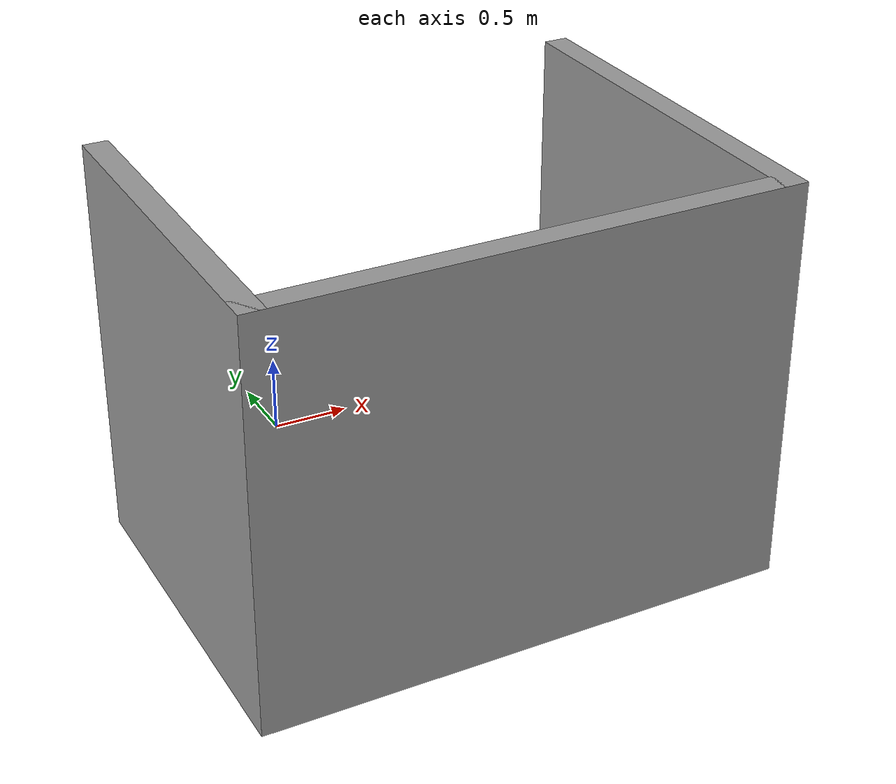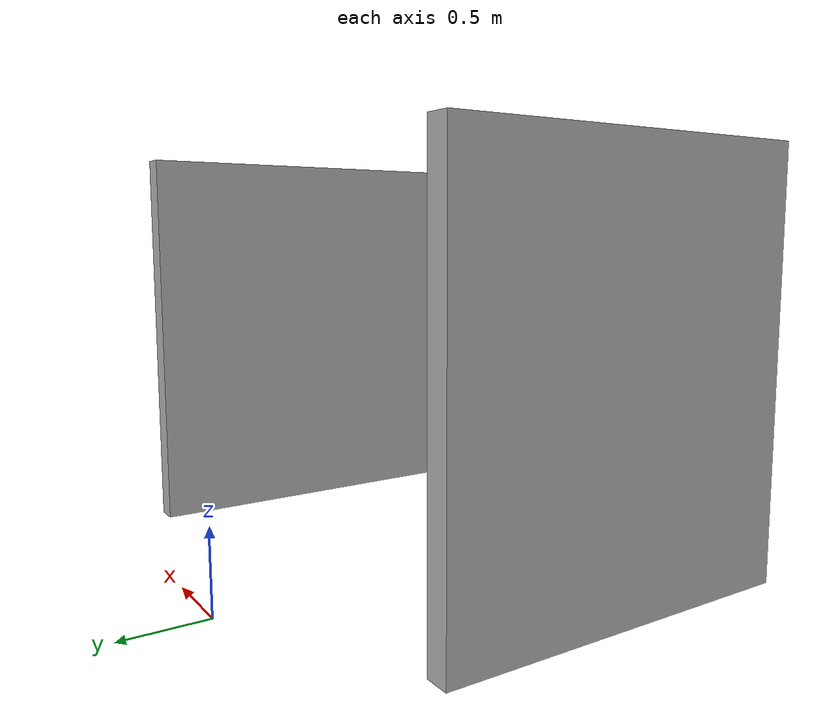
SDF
<?xml version='1.0'?>
<sdf version='1.6'>
  <model name='home_model_2'>
    <pose frame=''>0.321988 -1.41816 0 0 -0 0</pose>
    <link name='Wall_0'>
      <collision name='Wall_0_Collision'>
        <geometry>
          <box>
            <size>2.25 0.15 2.5</size>
          </box>
        </geometry>
        <pose frame=''>0 0 1.25 0 -0 0</pose>
      </collision>
      <visual name='Wall_0_Visual'>
        <pose frame=''>0 0 1.25 0 -0 0</pose>
        <geometry>
          <box>
            <size>2.25 0.15 2.5</size>
          </box>
        </geometry>
        <material>
          <script>
            <uri>file://media/materials/scripts/gazebo.material</uri>
            <name>Gazebo/Grey</name>
          </script>
          <ambient>1 1 1 1</ambient>
        </material>
        <meta>
          <layer>0</layer>
        </meta>
      </visual>
      <pose frame=''>-1.55 -0.293159 0 0 -0 -1.5708</pose>
    </link>
    <link name='Wall_1'>
      <collision name='Wall_1_Collision'>
        <geometry>
          <box>
            <size>3.25 0.15 2.5</size>
          </box>
        </geometry>
        <pose frame=''>0 0 1.25 0 -0 0</pose>
      </collision>
      <visual name='Wall_1_Visual'>
        <pose frame=''>0 0 1.25 0 -0 0</pose>
        <geometry>
          <box>
            <size>3.25 0.15 2.5</size>
          </box>
        </geometry>
        <material>
          <script>
            <uri>file://media/materials/scripts/gazebo.material</uri>
            <name>Gazebo/Grey</name>
          </script>
          <ambient>1 1 1 1</ambient>
        </material>
        <meta>
          <layer>0</layer>
        </meta>
      </visual>
      <pose frame=''>0 -1.34316 0 0 -0 0</pose>
    </link>
    <link name='Wall_2'>
      <collision name='Wall_2_Collision'>
        <geometry>
          <box>
            <size>2.5 0.15 2.5</size>
          </box>
        </geometry>
        <pose frame=''>0 0 1.25 0 -0 0</pose>
      </collision>
      <visual name='Wall_2_Visual'>
        <pose frame=''>0 0 1.25 0 -0 0</pose>
        <geometry>
          <box>
            <size>2.5 0.15 2.5</size>
          </box>
        </geometry>
        <material>
          <script>
            <uri>file://media/materials/scripts/gazebo.material</uri>
            <name>Gazebo/Grey</name>
          </script>
          <ambient>1 1 1 1</ambient>
        </material>
        <meta>
          <layer>0</layer>
        </meta>
      </visual>
      <pose frame=''>1.55 -0.168159 0 0 -0 1.5708</pose>
    </link>
    <static>1</static>
  </model>
</sdf>
